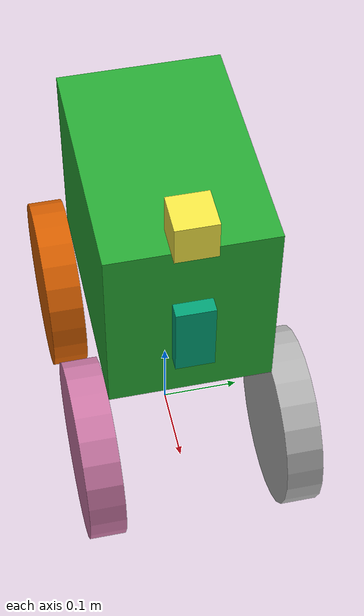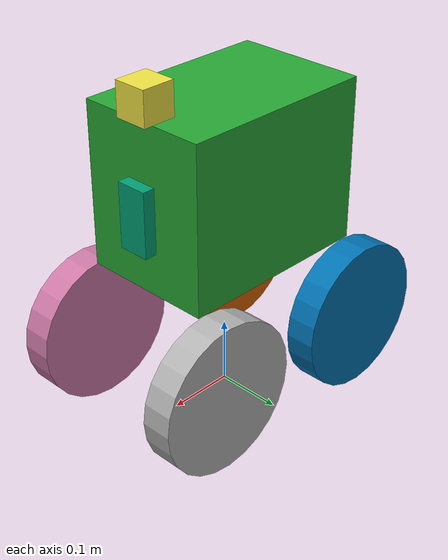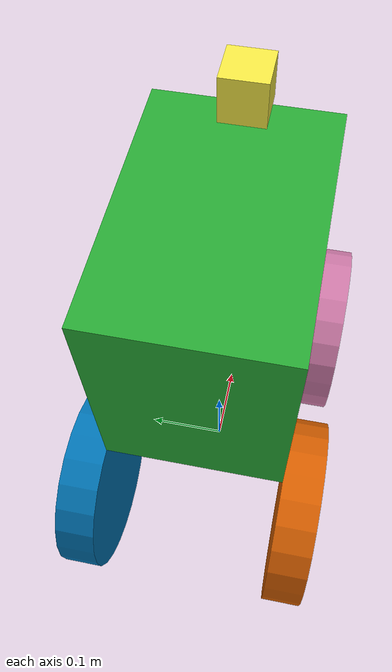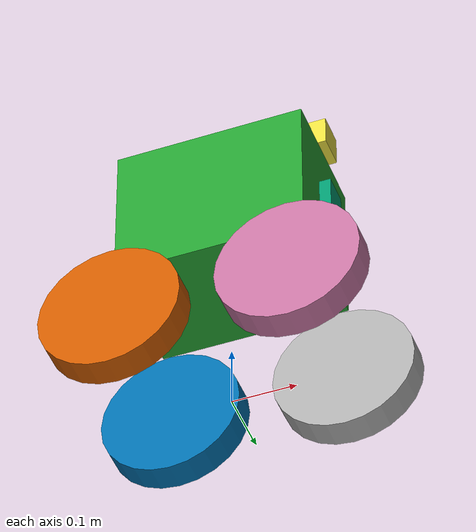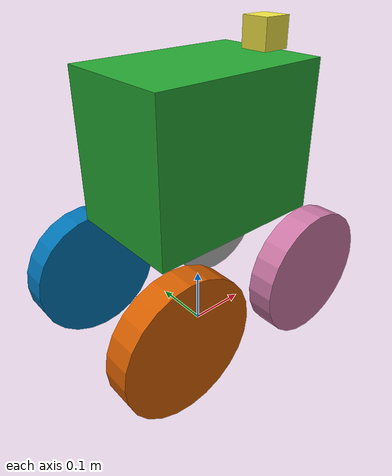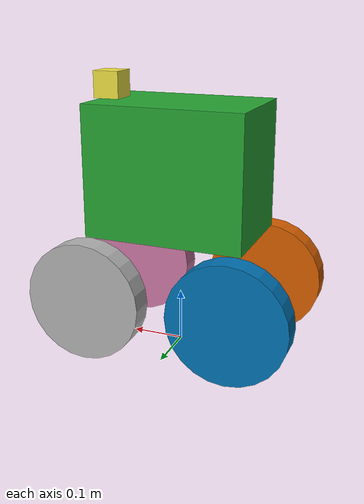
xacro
<?xml version="1.0"?>
<robot xmlns:xacro="http://www.ros.org/wiki/xacro">

    <!-- Properties -->
    <xacro:property name="base_length" value="0.30"/>
    <xacro:property name="base_width"  value="0.20"/>
    <xacro:property name="base_height" value="0.245"/>
    <xacro:property name="wheel_radius" value="0.112"/>
    <xacro:property name="wheel_length" value="0.045"/>
    <xacro:property name="lidar_length" value="0.060"/>
    <xacro:property name="lidar_width" value="0.047"/>
    <xacro:property name="lidar_heigth" value="0.096"/>

    <!-- Footprint -->
    <link name="base_footprint"/>

    <!-- Base Link -->
    <link name="base_link">
        <visual>

            <geometry>
                <box size="${base_length} ${base_width} ${base_height}"/>
            </geometry>
            <origin xyz="0 0 ${wheel_radius+(base_height/2.0)}" rpy="0 0 0"/>
            <material name="green "/>
        </visual>
        <xacro:box_inertia m="5.0" x="${base_length}" y="${base_width}" z="${base_height}"
                           xyz="0 0 0" rpy="0 0 0"/>

        <collision>
            <geometry>
                <box size="${base_length} ${base_width} ${base_height}"/>
            </geometry>
            <origin xyz="0 0 ${wheel_radius+(base_height/2.0)}" rpy="0 0 0"/>
        </collision>
    </link>

    <link name="lidar_link">
         <visual>
              <geometry>
                   <box size="${lidar_length} ${lidar_width} ${lidar_heigth}"/>
              </geometry>
              <origin xyz="0 0 0" rpy="0 0 0"/>
              <material name="color2"/>
         </visual>
         <xacro:box_inertia m="5.0" x="${lidar_length}" y="${lidar_width}" z="${lidar_heigth}"
                            xyz="0 0 0" rpy="0 0 0"/>

        <collision>
            <geometry>
                   <box size="${lidar_length} ${lidar_width} ${lidar_heigth}"/>
              </geometry>
              <origin xyz="0 0 0" rpy="0 0 0"/>
        </collision>
    </link>

    <link name="camera_link">
        <visual>
            <geometry>
                <box size="0.05 0.05 0.05"/>
            </geometry>
            <origin xyz="0 0 0" rpy="0 0 0"/>
            <material name="violet"/>
        </visual>
        <xacro:box_inertia m="1.0" x="0.05" y="0.05" z="0.05"
                           xyz="0 0 0"   rpy="0 0 0"/>

        <collision>
            <geometry>
                <box size="0.05 0.05 0.05"/>
            </geometry>
            <origin xyz="0 0 0" rpy="0 0 0"/>
        </collision>
    </link>

    <link name="right_back_wheel_link">
        <visual>
            <geometry>
                <cylinder radius="${wheel_radius}" length="${wheel_length}"/>
            </geometry>
            <origin xyz="0 0 0" rpy="${pi/2.0} 0 0"/>
            <material name="violet" />
        </visual>
        <xacro:cyl_inertia m="1.0" r="${wheel_radius}" h="${wheel_length}"
                           xyz="0 0 0" rpy="${pi/2.0} 0 0"/>
        <collision>
           <geometry>
                <cylinder radius="${wheel_radius}" length="${wheel_length}"/>
            </geometry>
            <origin xyz="0 0 0" rpy="${pi/2.0} 0 0"/>
        </collision>
    </link>

    <link name="left_back_wheel_link">
        <visual>
            <geometry>
                <cylinder radius="${wheel_radius}" length="${wheel_length}"/>
            </geometry>
            <origin xyz="0 0 0" rpy="${pi/2.0} 0 0"/>
            <material name="violet" />
        </visual>
        <xacro:cyl_inertia m="1.0" r="${wheel_radius}" h="${wheel_length}"
                           xyz="0 0 0" rpy="${pi/2.0} 0 0"/>
        <collision>
            <geometry>
                <cylinder radius="${wheel_radius}" length="${wheel_length}"/>
            </geometry>
            <origin xyz="0 0 0" rpy="${pi/2.0} 0 0"/>
        </collision>
    </link>

    <link name="left_front_wheel_link">
        <visual>
            <geometry>
                <cylinder radius="${wheel_radius}" length="${wheel_length}"/>
            </geometry>
            <origin xyz="0 0 0" rpy="${pi/2.0} 0 0"/>
            <material name="violet" />
        </visual>
        <xacro:cyl_inertia m="1.0" r="${wheel_radius}" h="${wheel_length}"
                           xyz="0 0 0" rpy="${pi/2.0} 0 0"/>

        <collision>
             <geometry>
                <cylinder radius="${wheel_radius}" length="${wheel_length}"/>
            </geometry>
            <origin xyz="0 0 0" rpy="${pi/2.0} 0 0"/>
        </collision>
    </link>

    <link name="right_front_wheel_link">
        <visual>
            <geometry>
               <cylinder radius="${wheel_radius}" length="${wheel_length}"/>
            </geometry>
    <!-- Visual is centered in its own link frame -->
            <origin xyz="0 0 0" rpy="${pi/2.0} 0 0"/>
            <material name="violet" />
        </visual>
        <xacro:cyl_inertia m="1.0" r="${wheel_radius}" h="${wheel_length}"
                           xyz="0 0 0" rpy="${pi/2.0} 0 0"/>
        <collision>
            <geometry>
               <cylinder radius="${wheel_radius}" length="${wheel_length}"/>
            </geometry>
            <origin xyz="0 0 0" rpy="${pi/2.0} 0 0"/>
        </collision>

    </link>

    <joint name="base_joint" type="fixed">
        <parent link="base_footprint"/>
        <child link="base_link"/>
        <origin xyz="0 0 ${wheel_radius}" rpy="0 0 0"/>
    </joint>

    <joint name="lidar_joint" type="fixed">
        <parent link="base_link"/>
        <child link="lidar_link"/>
        <origin xyz="${(base_length/2.0)-0.01175} 0 0.224" rpy="0 0 0"/>
    </joint>

    <joint name="camera_joint" type="fixed">
        <parent link="base_link"/>
        <child link="camera_link"/>
        <origin xyz="${(base_length/2.0)-0.01175} 0 ${base_height+0.112+0.025}" rpy="0 0 0"/>
    </joint>

   <joint name="l_b_wheel_base_joint" type="continuous">
        <parent link="base_link"/>
        <child link="left_back_wheel_link"/>
        <origin xyz="-${(base_length/2.0)-0.01175} -${(base_width+wheel_length)/2.0} 0" rpy="0 0 0"/>
        <axis xyz="0 1 0"/>
    </joint>
    <joint name="r_b_wheel_base_joint" type="continuous">
         <parent link="base_link"/>
         <child link="right_back_wheel_link"/>
         <origin xyz="-${(base_length/2.0)-0.01175} +${(base_width+wheel_length)/2.0} 0" rpy="0 0 0"/>
         <axis xyz="0 1 0"/>
    </joint>
    <!-- front left wheel -->
    <joint name="l_f_wheel_base_joint" type="continuous">
        <parent link="base_link"/>
        <child link="left_front_wheel_link"/>
        <origin xyz="${(base_length/2.0)-0.01175} -${(base_width+wheel_length)/2.0} 0" rpy="0 0 0"/>
        <axis xyz="0 1 0"/>
    </joint>

    <!-- front right wheel -->
    <joint name="r_f_wheel_base_joint" type="continuous">
        <parent link="base_link"/>
        <child link="right_front_wheel_link"/>
        <origin xyz="${(base_length/2.0)-0.01175} ${(base_width+wheel_length)/2.0} 0" rpy="0 0 0"/>
        <axis xyz="0 1 0"/>
    </joint>
</robot>
